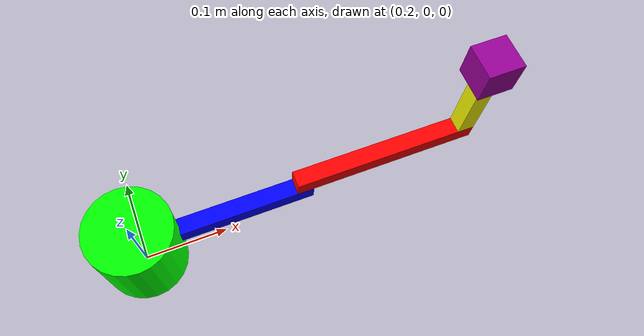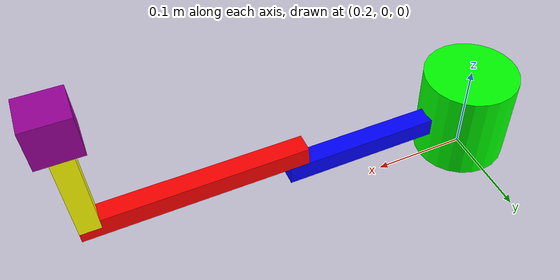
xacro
<?xml version="1.0"?>

<robot name="double_pendulum" xmlns:xacro="http://www.ros.org/wiki/xacro">
    <xacro:include filename="double_pendulum_params.xacro"/>

  <!-- World link -->
  <link name="world"/>

  <!-- Link base (fijo) -->
  <link name="base_link">
      <visual>
          <origin xyz="0 0 ${base_length/2}"/>
          <geometry>
              <cylinder radius="${base_radius}" length="${base_length}"/>
          </geometry>
          <material name="green">
              <color rgba="0 1 0 1"/>
          </material>
      </visual>
      <collision>
          <origin xyz="0 0 ${base_length/2}"/>
          <geometry>
              <cylinder radius="${base_radius}" length="${base_length}"/>
          </geometry>
      </collision>
  </link>

  <!-- Primer eslabón -->
  <link name="link1">
      <visual>
          <origin xyz="${L1/2} 0 0"/>
          <geometry>
              <box size="${L1+0.02} ${link_width} ${link_height}"/>
          </geometry>
          <material name="blue">
              <color rgba="0 0 1 1"/>
          </material>
      </visual>
      <collision>
          <origin xyz="${L1/2} 0 0"/>
          <geometry>
              <box size="${L1+0.02} ${link_width} ${link_height}"/>
          </geometry>
      </collision>
  </link>

  <!-- Segundo eslabón -->
  <link name="link2">
      <visual>
          <origin xyz="0.1 0 0"/>
          <geometry>
              <box size="0.22 0.02 0.02"/>
          </geometry>
          <material name="red">
              <color rgba="1 0 0 1"/>
          </material>
      </visual>
      <collision>
          <origin xyz="0.1 0 0"/>
          <geometry>
              <box size="0.2 0.02 0.02"/>
          </geometry>
      </collision>
  </link>

  <!-- Tercer eslabón -->
  <link name="link3">
    <visual>
        <origin xyz="0 0 ${L3/2}"/>
        <geometry>
            <box size="${link3_width} ${link3_width} ${L3}"/>
        </geometry>
        <material name="yellow"><color rgba="1 1 0 1"/></material>
    </visual>
    <collision>
        <origin xyz="0 0 ${L3/2}"/>
        <geometry>
            <box size="${link3_width} ${link3_width} ${L3}"/>
        </geometry>
    </collision>
  </link>

  <link name="link4">
    <visual>
        <origin xyz="0 0 ${link4_width/2}"/>
        <geometry>
            <box size="${link4_width} ${link4_width} ${link4_width}"/>
        </geometry>
        <material name="purple"><color rgba="0.6 0 0.6 1"/></material>
    </visual>
    <collision>
        <origin xyz="0 0 ${link4_width/2}"/>
        <geometry>
            <box size="${link4_width} ${link4_width} ${link4_width}"/>
        </geometry>
    </collision>
  </link>

  <!--******************* DEFINICIONES DE JUNTAS  *******************-->
  <!-- Junta fija entre world y base_link -->
  <joint name="fixed" type="fixed">
      <parent link="world"/>
      <child link="base_link"/>
      <origin xyz="0.2 0 0" rpy="0 0 0"/>
  </joint>

  <!-- Junta entre base y link1 -->
  <joint name="joint1" type="revolute">
      <parent link="base_link"/>
      <child link="link1"/>
      <origin xyz="0 0 ${base_length/2}"/>
      <axis xyz="0 0 1"/>
      <limit effort="1000" lower="-3.14" upper="3.14" velocity="5"/>
  </joint>

  <!-- Junta entre link1 y link2 -->
  <joint name="joint2" type="revolute">
      <parent link="link1"/>
      <child link="link2"/>
      <origin xyz="${L1} 0 ${link_height}"/>
      <axis xyz="0 0 1"/>
      <limit effort="1000" lower="-3.14" upper="3.14" velocity="5"/>
  </joint>

  <!-- Junta entre link2 y link3 -->
  <joint name="joint3" type="revolute">
      <parent link="link2"/>
      <child link="link3"/>
      <origin xyz="0.2 0 0"/>
      <axis xyz="0 0 1"/>
      <limit effort="1000" lower="-3.14" upper="3.14" velocity="5"/>
  </joint>

  <!-- Junta entre link3 y link4 -->
  <joint name="joint4" type="revolute">
      <parent link="link3"/>
      <child link="link4"/>
      <origin xyz="0 0 ${L3}"/>
      <axis xyz="0 0 1"/>
      <limit effort="1000" lower="-3.14" upper="3.14" velocity="5"/>
  </joint>
</robot>

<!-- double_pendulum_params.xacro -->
<robot xmlns:xacro="http://www.ros.org/wiki/xacro">

    <!-- Longitudes -->
    <xacro:property name="L1" value="0.2"/>
    <xacro:property name="L2" value="0.2"/>

    <!-- Espesores -->
    <xacro:property name="link_width" value="0.02"/>
    <xacro:property name="link_height" value="0.02"/>

    <!-- base -->
    <xacro:property name="base_length" value="0.1"/>
    <xacro:property name="base_radius" value="0.05"/>

    <!-- link3 -->
    <xacro:property name="link3_length" value="0.1"/>
    <xacro:property name="link3_width" value="0.02"/>
    <xacro:property name="link3_height" value="0.02"/>

    <!-- link4 -->
    <xacro:property name="link4_length" value="0.4"/>
    <xacro:property name="link4_width" value="0.02"/>
    <xacro:property name="link4_height" value="0.02"/>

    <xacro:property name="L3" value="0.1"/>
    <xacro:property name="link3_width" value="0.02"/>
    <xacro:property name="prismatic_lower" value="-0.05"/>
    <xacro:property name="prismatic_upper" value="0.05"/>
    <xacro:property name="link4_width" value="0.04"/>
</robot>
